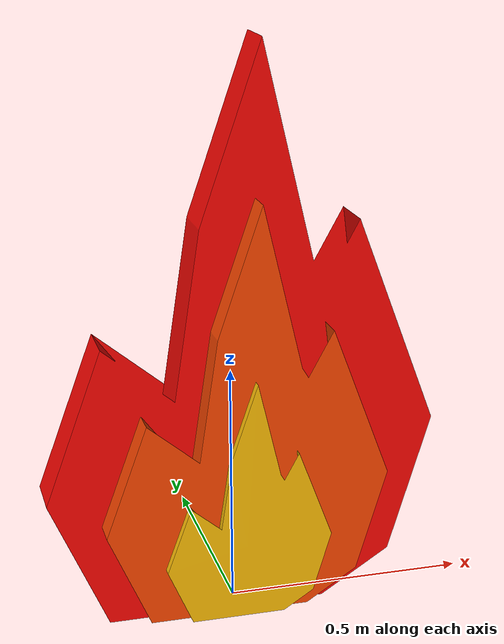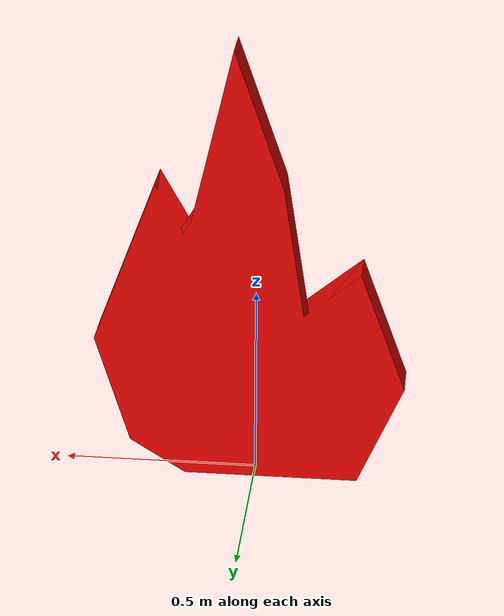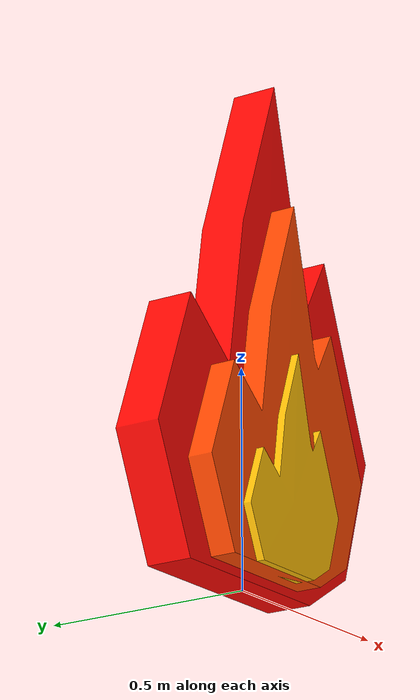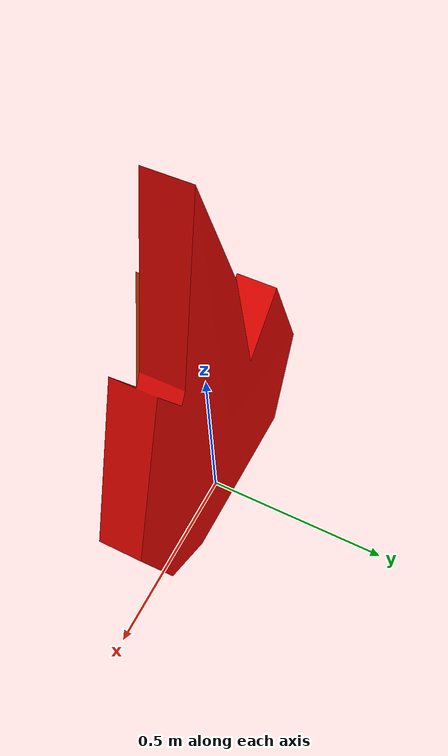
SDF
<?xml version="1.0"?>
<sdf version="1.6">
  <model name="fire_event">
    <static>true</static>
    <link name="flame">
      <!-- Visual-only: a detected fire must not become a physical obstacle. -->
      <visual name="outer_red_flame">
        <geometry><mesh><uri>model://fire_event/meshes/flame.obj</uri><scale>0.9 0.9 0.9</scale></mesh></geometry>
        <material><ambient>1 0.03 0.01 1</ambient><diffuse>1 0.03 0.01 1</diffuse><emissive>0.9 0.02 0 1</emissive></material>
      </visual>
      <visual name="middle_orange_flame">
        <pose>0 -0.075 0.02 0 0 0</pose>
        <geometry><mesh><uri>model://fire_event/meshes/flame.obj</uri><scale>0.65 0.65 0.65</scale></mesh></geometry>
        <material><ambient>1 0.28 0 1</ambient><diffuse>1 0.28 0 1</diffuse><emissive>1 0.2 0 1</emissive></material>
      </visual>
      <visual name="inner_yellow_flame">
        <pose>0 -0.11 0.02 0 0 0</pose>
        <geometry><mesh><uri>model://fire_event/meshes/flame.obj</uri><scale>0.38 0.38 0.38</scale></mesh></geometry>
        <material><ambient>1 0.75 0.02 1</ambient><diffuse>1 0.75 0.02 1</diffuse><emissive>1 0.65 0 1</emissive></material>
      </visual>
    </link>
  </model>
</sdf>
